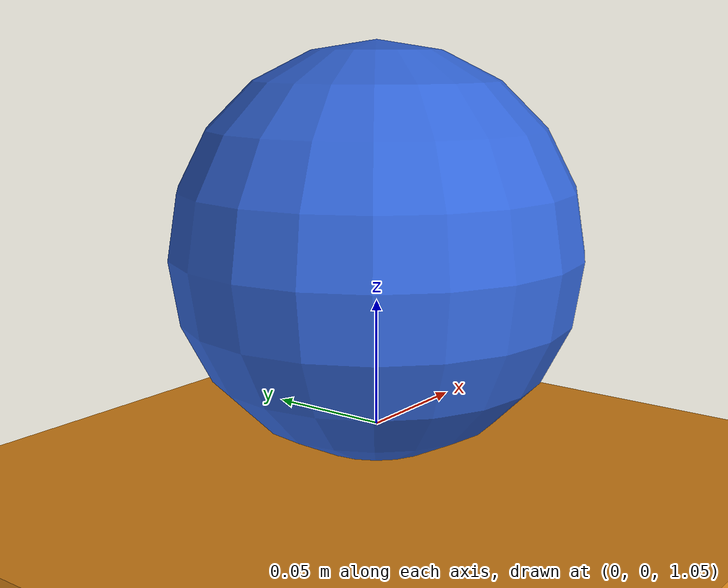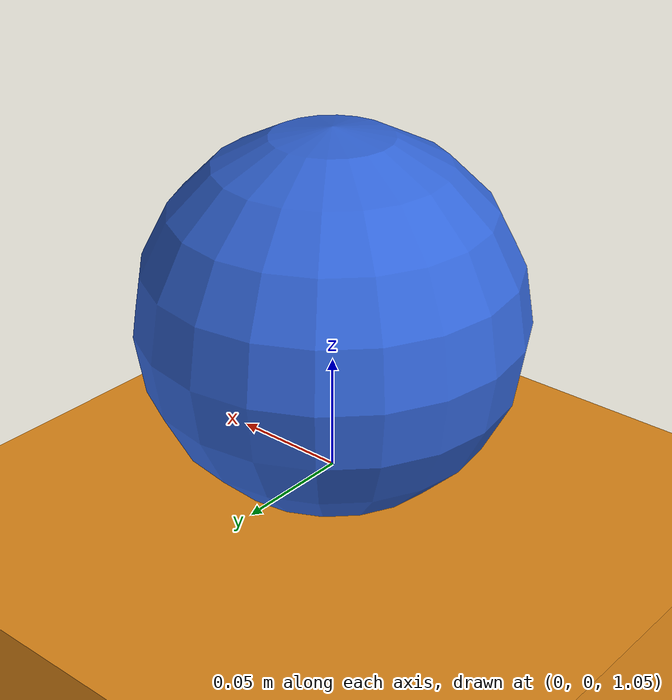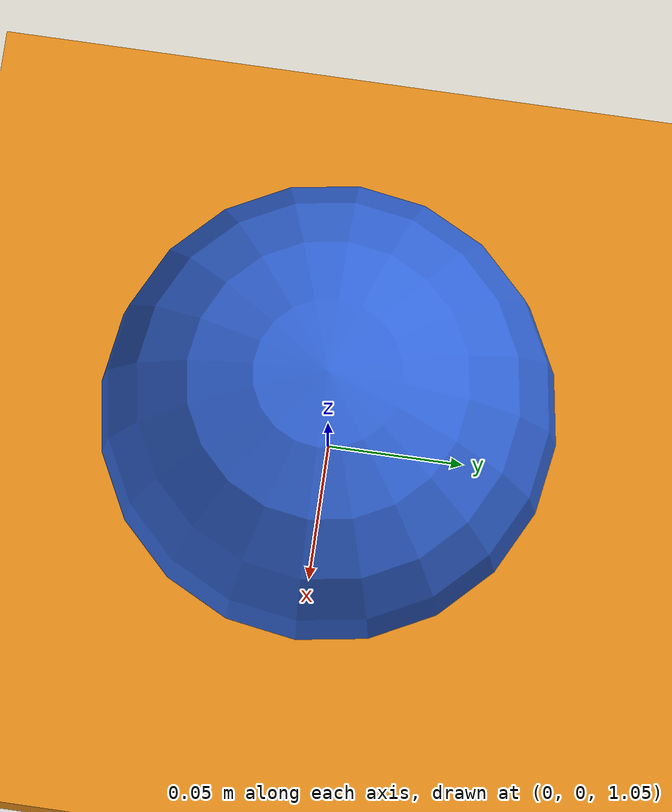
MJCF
<mujoco model="tilt-drop">
  <compiler angle="radian"/>
  <option gravity="0 0 -9.81" timestep="0.002" integrator="RK4"/>

  <worldbody>
    <geom type="plane" size="5 5 0.1" rgba="0.3 0.3 0.3 1"/>

    <body name="platform" mocap="true" pos="0 0 1.0">
      <geom name="plat_geom" type="box" size="0.6 0.4 0.03" mass="5.0"
            rgba="0.9 0.55 0.1 1"/>
    </body>

    <body name="ball" pos="0 0 1.12">
      <freejoint name="free"/>
      <geom name="ball_geom" type="sphere" size="0.08" mass="0.3"
            rgba="0.2 0.4 0.85 1"/>
    </body>
  </worldbody>
</mujoco>
